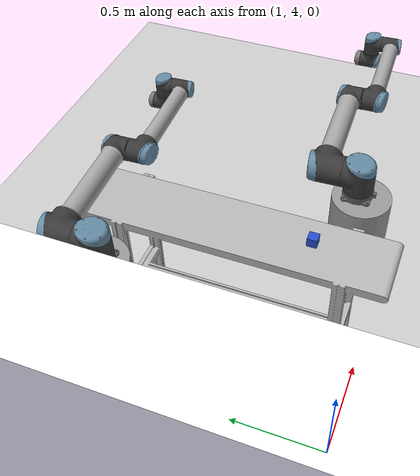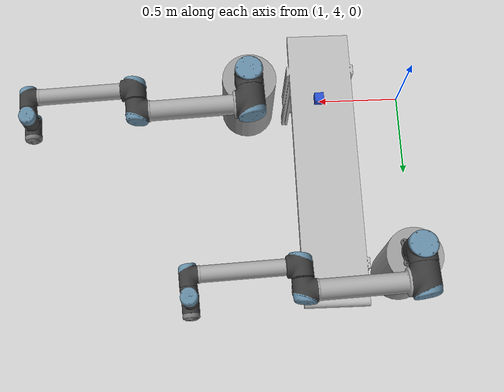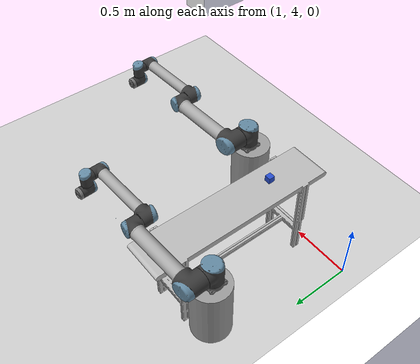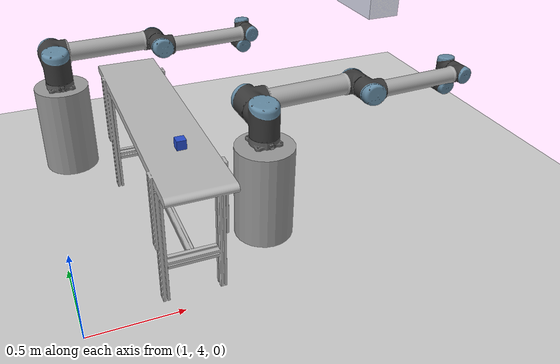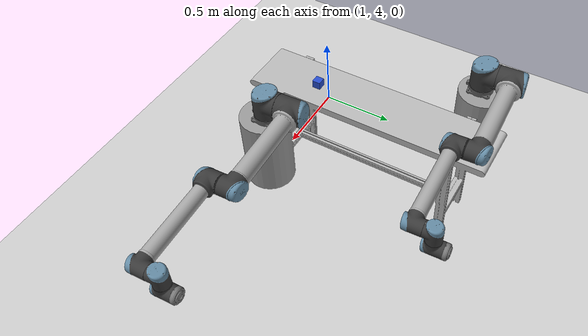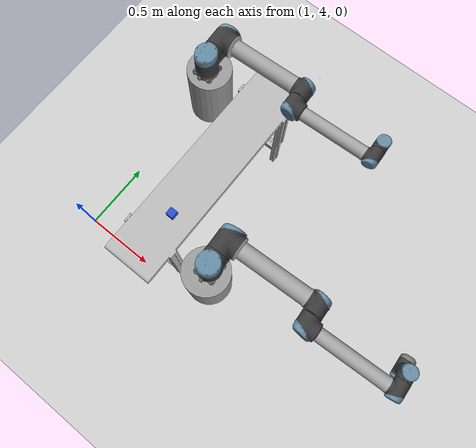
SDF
<sdf version="1.7">
 <world name="default">
  <physics type="ode">
   <ode>
    <constraints>
     <cfm>0</cfm>
     <erp>0.2</erp>
     <contact_max_correcting_vel>100</contact_max_correcting_vel>
     <contact_surface_layer>0.001</contact_surface_layer>
    </constraints>
    <solver>
     <type>quick</type>
     <iters>50</iters>
     <sor>1.3</sor>
     <use_dynamic_moi_rescaling>0</use_dynamic_moi_rescaling>
    </solver>
   </ode>
   <max_step_size>0.001</max_step_size>
   <real_time_factor>1</real_time_factor>
   <real_time_update_rate>1000</real_time_update_rate>
  </physics>
  <model name="ground_plane">
   <static>1</static>
   <link name="link">
    <collision name="collision">
     <geometry><plane><normal>0 0 1</normal><size>100 100</size></plane></geometry>
     <surface>
      <contact><collide_bitmask>65535</collide_bitmask></contact>
      <friction><ode><mu>100</mu><mu2>50</mu2></ode></friction>
     </surface>
    </collision>
    <visual name="visual">
     <cast_shadows>0</cast_shadows>
     <geometry><plane><normal>0 0 1</normal><size>100 100</size></plane></geometry>
     <material>
      <script><uri>file://media/materials/scripts/gazebo.material</uri><name>Gazebo/Grey</name></script>
     </material>
    </visual>
   </link>
  </model>
  <light name="sun" type="directional">
   <pose>0 0 10 0 -0 0</pose>
   <diffuse>0.8 0.8 0.8 1</diffuse>
   <specular>0.2 0.2 0.2 1</specular>
   <attenuation>
    <range>1000</range>
    <constant>0.9</constant>
    <linear>0.01</linear>
    <quadratic>0.001</quadratic>
   </attenuation>
   <direction>-0.5 0.1 -0.9</direction>
   <spot><inner_angle>0</inner_angle><outer_angle>0</outer_angle><falloff>0</falloff></spot>
  </light>
  <model name="aass_lab">
   <static>1</static>
   <link name="aass_lab_structure">
    <collision name="aass_lab_collision">
     <geometry><mesh><uri>model://aass_lab/meshes/lab.dae</uri></mesh></geometry>
    </collision>
    <visual name="visual">
     <geometry><mesh><uri>model://aass_lab/meshes/lab.dae</uri></mesh></geometry>
     <cast_shadows>0</cast_shadows>
    </visual>
   </link>
  </model>
  <gravity>0 0 -9.8</gravity>
  <magnetic_field>6e-06 2.3e-05 -4.2e-05</magnetic_field>
  <atmosphere type="adiabatic"/>
  <scene><ambient>0.4 0.4 0.4 1</ambient><background>0.7 0.7 0.7 1</background><shadows>1</shadows></scene>
  <spherical_coordinates>
   <surface_model>EARTH_WGS84</surface_model>
   <latitude_deg>0</latitude_deg>
   <longitude_deg>0</longitude_deg>
   <elevation>0</elevation>
   <heading_deg>0</heading_deg>
  </spherical_coordinates>
  <model name="conveyor_belt">
   <joint name="fixed" type="fixed">
    <pose relative_to="__model__">1.58059 4.67206 0 0 -0 0</pose>
    <parent>world</parent>
    <child>belt_visual</child>
   </joint>
   <link name="belt_visual">
    <pose relative_to="fixed">0 0 0 0 -0 0</pose>
    <inertial>
     <pose>0 -0 0.66019 0 -0 0</pose>
     <mass>71.953</mass>
     <inertia>
      <ixx>7.5972</ixx>
      <ixy>-1.394e-14</ixy>
      <ixz>1.9328e-17</ixz>
      <iyy>0.99673</iyy>
      <iyz>-9.2056e-18</iyz>
      <izz>8.1168</izz>
     </inertia>
    </inertial>
    <collision name="belt_visual_collision">
     <pose>0 0 0 1.5708 -0 1.5708</pose>
     <geometry>
      <mesh>
       <scale>1 1 1</scale>
       <uri>/home/varadaraya-shenoy/RnD1/nav1/src/navigation_oru-release/gazebo_oru/conveyor_demo/src/demo_world/meshes/conveyor_simple.stl</uri>
      </mesh>
     </geometry>
    </collision>
    <visual name="belt_visual_visual">
     <geometry>
      <mesh>
       <scale>1 1 1</scale>
       <uri>/home/varadaraya-shenoy/RnD1/nav1/src/navigation_oru-release/gazebo_oru/conveyor_demo/src/demo_world/meshes/conveyor_belt.stl</uri>
      </mesh>
     </geometry>
    </visual>
   </link>
   <joint name="belt_joint" type="prismatic">
    <pose relative_to="belt_visual">0 0 0.74 0 -0 0</pose>
    <parent>belt_visual</parent>
    <child>belt_moving</child>
    <axis>
     <xyz>0 1 0</xyz>
     <limit><lower>0</lower><upper>1</upper><effort>1000</effort><velocity>1000</velocity></limit>
     <dynamics><spring_reference>0</spring_reference><spring_stiffness>0</spring_stiffness></dynamics>
    </axis>
   </joint>
   <link name="belt_moving">
    <pose relative_to="belt_joint">0 0 0 0 -0 0</pose>
    <inertial>
     <mass>100</mass>
     <inertia><ixx>0</ixx><ixy>0</ixy><ixz>0</ixz><iyy>0</iyy><iyz>0</iyz><izz>0</izz></inertia>
    </inertial>
    <collision name="belt_moving_collision">
     <pose>0 0 0.0005 0 -0 0</pose>
     <geometry><box><size>0.425 1.2 0.001</size></box></geometry>
    </collision>
   </link>
   <static>0</static>
   <plugin name="conveyor_belt_plugin" filename="libROSConveyorBeltPlugin.so">
    <robot_namespace>/</robot_namespace>
    <link>belt_moving</link>
    <power>0</power>
    <max_velocity>1.0</max_velocity>
    <robotNamespace>/conveyor/</robotNamespace>
   </plugin>
   <pose>2e-06 -0 -2e-06 0 -2e-06 0</pose>
  </model>
  <model name="ur10">
   <link name="base">
    <inertial>
     <mass>4</mass>
     <inertia>
      <ixx>0.00610633</ixx>
      <ixy>0</ixy>
      <ixz>0</ixz>
      <iyy>0.00610633</iyy>
      <iyz>0</iyz>
      <izz>0.01125</izz>
     </inertia>
    </inertial>
    <collision name="collision">
     <pose>0 0 0.019 0 -0 0</pose>
     <geometry><cylinder><radius>0.075</radius><length>0.038</length></cylinder></geometry>
    </collision>
    <visual name="visual"><geometry><mesh><uri>model://ur10/meshes/base.dae</uri></mesh></geometry></visual>
   </link>
   <link name="shoulder">
    <pose>0 0 0.1273 0 -0 0</pose>
    <inertial>
     <mass>7.778</mass>
     <inertia>
      <ixx>0.0314743</ixx>
      <ixy>0</ixy>
      <ixz>0</ixz>
      <iyy>0.0314743</iyy>
      <iyz>0</iyz>
      <izz>0.0218756</izz>
     </inertia>
    </inertial>
    <collision name="collision">
     <geometry><cylinder><radius>0.075</radius><length>0.177</length></cylinder></geometry>
    </collision>
    <visual name="visual"><geometry><mesh><uri>model://ur10/meshes/shoulder.dae</uri></mesh></geometry></visual>
   </link>
   <link name="upper_arm">
    <pose>0 0.220941 0.1273 3.14159 1.57079 3.14159</pose>
    <inertial>
     <pose>0 0 0.306 0 -0 0</pose>
     <mass>12.93</mass>
     <inertia>
      <ixx>0.421754</ixx>
      <ixy>0</ixy>
      <ixz>0</ixz>
      <iyy>0.421754</iyy>
      <iyz>0</iyz>
      <izz>0.0363656</izz>
     </inertia>
    </inertial>
    <collision name="collision1">
     <pose>0 -0.045 0 1.5707 -0 0</pose>
     <geometry><cylinder><radius>0.075</radius><length>0.177</length></cylinder></geometry>
    </collision>
    <collision name="collision2">
     <pose>0 -0.0436 0.32 0 -0 1.5707</pose>
     <geometry><cylinder><radius>0.058</radius><length>0.461</length></cylinder></geometry>
    </collision>
    <collision name="collision3">
     <pose>0 -0.04 0.613 1.5707 -0 0</pose>
     <geometry><cylinder><radius>0.058</radius><length>0.129</length></cylinder></geometry>
    </collision>
    <visual name="visual"><geometry><mesh><uri>model://ur10/meshes/upperarm.dae</uri></mesh></geometry></visual>
   </link>
   <link name="forearm">
    <pose>0.612 0.049041 0.1273 3.14159 1.57079 3.14159</pose>
    <inertial>
     <pose>0 0 0.28615 0 -0 0</pose>
     <mass>3.87</mass>
     <inertia>
      <ixx>0.11107</ixx>
      <ixy>0</ixy>
      <ixz>0</ixz>
      <iyy>0.11107</iyy>
      <iyz>0</iyz>
      <izz>0.0108844</izz>
     </inertia>
    </inertial>
    <collision name="collision1">
     <pose>0 0 0.001 1.5707 -0 0</pose>
     <geometry><cylinder><radius>0.058</radius><length>0.136</length></cylinder></geometry>
    </collision>
    <collision name="collision2">
     <pose>0 0 0.305 0 -0 1.5707</pose>
     <geometry><cylinder><radius>0.045</radius><length>0.447</length></cylinder></geometry>
    </collision>
    <collision name="collision3">
     <pose>0 0.001 0.5735 1.5707 -0 0</pose>
     <geometry><cylinder><radius>0.045</radius><length>0.119</length></cylinder></geometry>
    </collision>
    <visual name="visua"><geometry><mesh><uri>model://ur10/meshes/forearm.dae</uri></mesh></geometry></visual>
   </link>
   <link name="wrist_1">
    <pose>1.1843 0.049041 0.1273 3.14159 -0 3.14159</pose>
    <inertial>
     <mass>1.96</mass>
     <inertia>
      <ixx>0.00510825</ixx>
      <ixy>0</ixy>
      <ixz>0</ixz>
      <iyy>0.00510825</iyy>
      <iyz>0</iyz>
      <izz>0.0055125</izz>
     </inertia>
    </inertial>
    <collision name="collision">
     <pose>0 0.115 0.0025 0 -0 0</pose>
     <geometry><cylinder><radius>0.0455</radius><length>0.119</length></cylinder></geometry>
    </collision>
    <visual name="visual"><geometry><mesh><uri>model://ur10/meshes/wrist1.dae</uri></mesh></geometry></visual>
   </link>
   <link name="wrist_2">
    <pose>1.1843 0.163941 0.1273 3.14159 -0 3.14159</pose>
    <inertial>
     <mass>1.96</mass>
     <inertia>
      <ixx>0.00510825</ixx>
      <ixy>0</ixy>
      <ixz>0</ixz>
      <iyy>0.00510825</iyy>
      <iyz>0</iyz>
      <izz>0.0055125</izz>
     </inertia>
    </inertial>
    <collision name="collision">
     <pose>0 0.002 0.11659 1.5707 -0 0</pose>
     <geometry><cylinder><radius>0.0455</radius><length>0.119</length></cylinder></geometry>
    </collision>
    <visual name="visual"><geometry><mesh><uri>model://ur10/meshes/wrist2.dae</uri></mesh></geometry></visual>
   </link>
   <link name="wrist_3">
    <pose>1.1843 0.163941 0.0116 3.14159 -0 3.14159</pose>
    <inertial>
     <mass>0.202</mass>
     <inertia>
      <ixx>0.000526462</ixx>
      <ixy>0</ixy>
      <ixz>0</ixz>
      <iyy>0.000526462</iyy>
      <iyz>0</iyz>
      <izz>0.000568125</izz>
     </inertia>
    </inertial>
    <collision name="collision">
     <pose>0 0.0765 0 1.5707 -0 0</pose>
     <geometry><cylinder><radius>0.045</radius><length>0.031</length></cylinder></geometry>
    </collision>
    <visual name="visual"><geometry><mesh><uri>model://ur10/meshes/wrist3.dae</uri></mesh></geometry></visual>
   </link>
   <joint name="shoulder_pan" type="revolute">
    <child>shoulder</child>
    <parent>base</parent>
    <axis>
     <xyz expressed_in="__model__">0 0 1</xyz>
     <limit><lower>-6.28319</lower><upper>6.28319</upper><effort>330</effort><velocity>2.16</velocity></limit>
     <dynamics><spring_reference>0</spring_reference><spring_stiffness>0</spring_stiffness></dynamics>
    </axis>
   </joint>
   <joint name="shoulder_lift" type="revolute">
    <child>upper_arm</child>
    <parent>shoulder</parent>
    <axis>
     <xyz expressed_in="__model__">0 1 0</xyz>
     <limit><lower>-6.28319</lower><upper>6.28319</upper><effort>330</effort><velocity>2.16</velocity></limit>
     <dynamics><spring_reference>0</spring_reference><spring_stiffness>0</spring_stiffness></dynamics>
    </axis>
   </joint>
   <joint name="elbow" type="revolute">
    <child>forearm</child>
    <parent>upper_arm</parent>
    <axis>
     <xyz expressed_in="__model__">0 1 0</xyz>
     <limit><lower>-6.28319</lower><upper>6.28319</upper><effort>150</effort><velocity>3.15</velocity></limit>
     <dynamics><spring_reference>0</spring_reference><spring_stiffness>0</spring_stiffness></dynamics>
    </axis>
   </joint>
   <joint name="wrist_1" type="revolute">
    <child>wrist_1</child>
    <parent>forearm</parent>
    <axis>
     <xyz expressed_in="__model__">0 1 0</xyz>
     <limit><lower>-6.28319</lower><upper>6.28319</upper><effort>54</effort><velocity>3.2</velocity></limit>
     <dynamics><spring_reference>0</spring_reference><spring_stiffness>0</spring_stiffness></dynamics>
    </axis>
   </joint>
   <joint name="wrist_2" type="revolute">
    <child>wrist_2</child>
    <parent>wrist_1</parent>
    <axis>
     <xyz expressed_in="__model__">0 0 -1</xyz>
     <limit><lower>-6.28319</lower><upper>6.28319</upper><effort>54</effort><velocity>3.2</velocity></limit>
     <dynamics><spring_reference>0</spring_reference><spring_stiffness>0</spring_stiffness></dynamics>
    </axis>
   </joint>
   <joint name="wrist_3" type="revolute">
    <child>wrist_3</child>
    <parent>wrist_2</parent>
    <axis>
     <xyz expressed_in="__model__">0 1 0</xyz>
     <limit><lower>-6.28319</lower><upper>6.28319</upper><effort>54</effort><velocity>3.2</velocity></limit>
     <dynamics><spring_reference>0</spring_reference><spring_stiffness>0</spring_stiffness></dynamics>
    </axis>
   </joint>
   <pose>1.98237 4.18762 0.752656 8e-06 5e-06 0.045716</pose>
  </model>
  <model name="cube">
   <link name="base_link">
    <inertial>
     <mass>0.1</mass>
     <inertia>
      <ixx>4.16667e-05</ixx>
      <ixy>0</ixy>
      <ixz>0</ixz>
      <iyy>4.16667e-05</iyy>
      <iyz>0</iyz>
      <izz>4.16667e-05</izz>
     </inertia>
    </inertial>
    <collision name="base_link_collision">
     <pose>0 0 0.025 0 -0 0</pose>
     <geometry><box><size>0.05 0.05 0.05</size></box></geometry>
    </collision>
    <visual name="base_link_visual">
     <pose>0 0 0.025 0 -0 0</pose>
     <geometry><box><size>0.05 0.05 0.05</size></box></geometry>
     <material>
      <script><name>Gazebo/Blue</name><uri>file://media/materials/scripts/gazebo.material</uri></script>
     </material>
    </visual>
   </link>
   <pose>1.6 4.30202 0.740993 -0 -0.000309 6e-06</pose>
  </model>
  <model name="unit_cylinder">
   <link name="link">
    <inertial>
     <mass>1</mass>
     <inertia><ixx>0.145833</ixx><ixy>0</ixy><ixz>0</ixz><iyy>0.145833</iyy><iyz>0</iyz><izz>0.125</izz></inertia>
    </inertial>
    <visual name="visual">
     <geometry><cylinder><radius>0.15</radius><length>0.5</length></cylinder></geometry>
     <material>
      <script><name>Gazebo/Grey</name><uri>file://media/materials/scripts/gazebo.material</uri></script>
      <shader type="pixel"><normal_map>__default__</normal_map></shader>
      <ambient>0.3 0.3 0.3 1</ambient>
      <diffuse>0.7 0.7 0.7 1</diffuse>
      <specular>0.01 0.01 0.01 1</specular>
      <emissive>0 0 0 1</emissive>
     </material>
    </visual>
    <collision name="collision">
     <geometry><cylinder><radius>0.5</radius><length>1</length></cylinder></geometry>
     <surface>
      <friction>
       <ode><mu>1</mu><mu2>1</mu2><fdir1>0 0 0</fdir1><slip1>0</slip1><slip2>0</slip2></ode>
       <torsional>
        <coefficient>1</coefficient>
        <patch_radius>0</patch_radius>
        <surface_radius>0</surface_radius>
        <use_patch_radius>1</use_patch_radius>
        <ode><slip>0</slip></ode>
       </torsional>
      </friction>
      <bounce><restitution_coefficient>0</restitution_coefficient><threshold>1e+06</threshold></bounce>
      <contact>
       <collide_without_contact>0</collide_without_contact>
       <collide_without_contact_bitmask>1</collide_without_contact_bitmask>
       <collide_bitmask>1</collide_bitmask>
       <ode>
        <soft_cfm>0</soft_cfm>
        <soft_erp>0.2</soft_erp>
        <kp>1e+13</kp>
        <kd>1</kd>
        <max_vel>0.01</max_vel>
        <min_depth>0</min_depth>
       </ode>
       <bullet>
        <split_impulse>1</split_impulse>
        <split_impulse_penetration_threshold>-0.01</split_impulse_penetration_threshold>
        <soft_cfm>0</soft_cfm>
        <soft_erp>0.2</soft_erp>
        <kp>1e+13</kp>
        <kd>1</kd>
       </bullet>
      </contact>
     </surface>
    </collision>
   </link>
   <static>0</static>
   <pose>1.97526 4.16273 0.5 0 -0 0.000319</pose>
  </model>
  <model name="unit_cylinder_clone">
   <link name="link">
    <inertial>
     <mass>1</mass>
     <inertia><ixx>0.145833</ixx><ixy>0</ixy><ixz>0</ixz><iyy>0.145833</iyy><iyz>0</iyz><izz>0.125</izz></inertia>
    </inertial>
    <visual name="visual">
     <geometry><cylinder><radius>0.15</radius><length>0.5</length></cylinder></geometry>
     <material>
      <script><name>Gazebo/Grey</name><uri>file://media/materials/scripts/gazebo.material</uri></script>
      <shader type="pixel"><normal_map>__default__</normal_map></shader>
      <ambient>0.3 0.3 0.3 1</ambient>
      <diffuse>0.7 0.7 0.7 1</diffuse>
      <specular>0.01 0.01 0.01 1</specular>
      <emissive>0 0 0 1</emissive>
     </material>
    </visual>
    <collision name="collision">
     <geometry><cylinder><radius>0.5</radius><length>1</length></cylinder></geometry>
     <surface>
      <friction>
       <ode><mu>1</mu><mu2>1</mu2><fdir1>0 0 0</fdir1><slip1>0</slip1><slip2>0</slip2></ode>
       <torsional>
        <coefficient>1</coefficient>
        <patch_radius>0</patch_radius>
        <surface_radius>0</surface_radius>
        <use_patch_radius>1</use_patch_radius>
        <ode><slip>0</slip></ode>
       </torsional>
      </friction>
      <bounce><restitution_coefficient>0</restitution_coefficient><threshold>1e+06</threshold></bounce>
      <contact>
       <collide_without_contact>0</collide_without_contact>
       <collide_without_contact_bitmask>1</collide_without_contact_bitmask>
       <collide_bitmask>1</collide_bitmask>
       <ode>
        <soft_cfm>0</soft_cfm>
        <soft_erp>0.2</soft_erp>
        <kp>1e+13</kp>
        <kd>1</kd>
        <max_vel>0.01</max_vel>
        <min_depth>0</min_depth>
       </ode>
       <bullet>
        <split_impulse>1</split_impulse>
        <split_impulse_penetration_threshold>-0.01</split_impulse_penetration_threshold>
        <soft_cfm>0</soft_cfm>
        <soft_erp>0.2</soft_erp>
        <kp>1e+13</kp>
        <kd>1</kd>
       </bullet>
      </contact>
     </surface>
    </collision>
   </link>
   <static>0</static>
   <pose>1.16116 5.19196 0.5 0 -0 0.000319</pose>
  </model>
  <model name="ur10_clone">
   <link name="base">
    <inertial>
     <mass>4</mass>
     <inertia>
      <ixx>0.00610633</ixx>
      <ixy>0</ixy>
      <ixz>0</ixz>
      <iyy>0.00610633</iyy>
      <iyz>0</iyz>
      <izz>0.01125</izz>
     </inertia>
    </inertial>
    <collision name="collision">
     <pose>0 0 0.019 0 -0 0</pose>
     <geometry><cylinder><radius>0.075</radius><length>0.038</length></cylinder></geometry>
    </collision>
    <visual name="visual"><geometry><mesh><uri>model://ur10/meshes/base.dae</uri></mesh></geometry></visual>
   </link>
   <link name="shoulder">
    <pose>0 0 0.1273 0 -0 0</pose>
    <inertial>
     <mass>7.778</mass>
     <inertia>
      <ixx>0.0314743</ixx>
      <ixy>0</ixy>
      <ixz>0</ixz>
      <iyy>0.0314743</iyy>
      <iyz>0</iyz>
      <izz>0.0218756</izz>
     </inertia>
    </inertial>
    <collision name="collision">
     <geometry><cylinder><radius>0.075</radius><length>0.177</length></cylinder></geometry>
    </collision>
    <visual name="visual"><geometry><mesh><uri>model://ur10/meshes/shoulder.dae</uri></mesh></geometry></visual>
   </link>
   <link name="upper_arm">
    <pose>0 0.220941 0.1273 3.14159 1.57079 3.14159</pose>
    <inertial>
     <pose>0 0 0.306 0 -0 0</pose>
     <mass>12.93</mass>
     <inertia>
      <ixx>0.421754</ixx>
      <ixy>0</ixy>
      <ixz>0</ixz>
      <iyy>0.421754</iyy>
      <iyz>0</iyz>
      <izz>0.0363656</izz>
     </inertia>
    </inertial>
    <collision name="collision1">
     <pose>0 -0.045 0 1.5707 -0 0</pose>
     <geometry><cylinder><radius>0.075</radius><length>0.177</length></cylinder></geometry>
    </collision>
    <collision name="collision2">
     <pose>0 -0.0436 0.32 0 -0 1.5707</pose>
     <geometry><cylinder><radius>0.058</radius><length>0.461</length></cylinder></geometry>
    </collision>
    <collision name="collision3">
     <pose>0 -0.04 0.613 1.5707 -0 0</pose>
     <geometry><cylinder><radius>0.058</radius><length>0.129</length></cylinder></geometry>
    </collision>
    <visual name="visual"><geometry><mesh><uri>model://ur10/meshes/upperarm.dae</uri></mesh></geometry></visual>
   </link>
   <link name="forearm">
    <pose>0.612 0.049041 0.1273 3.14159 1.57079 3.14159</pose>
    <inertial>
     <pose>0 0 0.28615 0 -0 0</pose>
     <mass>3.87</mass>
     <inertia>
      <ixx>0.11107</ixx>
      <ixy>0</ixy>
      <ixz>0</ixz>
      <iyy>0.11107</iyy>
      <iyz>0</iyz>
      <izz>0.0108844</izz>
     </inertia>
    </inertial>
    <collision name="collision1">
     <pose>0 0 0.001 1.5707 -0 0</pose>
     <geometry><cylinder><radius>0.058</radius><length>0.136</length></cylinder></geometry>
    </collision>
    <collision name="collision2">
     <pose>0 0 0.305 0 -0 1.5707</pose>
     <geometry><cylinder><radius>0.045</radius><length>0.447</length></cylinder></geometry>
    </collision>
    <collision name="collision3">
     <pose>0 0.001 0.5735 1.5707 -0 0</pose>
     <geometry><cylinder><radius>0.045</radius><length>0.119</length></cylinder></geometry>
    </collision>
    <visual name="visua"><geometry><mesh><uri>model://ur10/meshes/forearm.dae</uri></mesh></geometry></visual>
   </link>
   <link name="wrist_1">
    <pose>1.1843 0.049041 0.1273 3.14159 -0 3.14159</pose>
    <inertial>
     <mass>1.96</mass>
     <inertia>
      <ixx>0.00510825</ixx>
      <ixy>0</ixy>
      <ixz>0</ixz>
      <iyy>0.00510825</iyy>
      <iyz>0</iyz>
      <izz>0.0055125</izz>
     </inertia>
    </inertial>
    <collision name="collision">
     <pose>0 0.115 0.0025 0 -0 0</pose>
     <geometry><cylinder><radius>0.0455</radius><length>0.119</length></cylinder></geometry>
    </collision>
    <visual name="visual"><geometry><mesh><uri>model://ur10/meshes/wrist1.dae</uri></mesh></geometry></visual>
   </link>
   <link name="wrist_2">
    <pose>1.1843 0.163941 0.1273 3.14159 -0 3.14159</pose>
    <inertial>
     <mass>1.96</mass>
     <inertia>
      <ixx>0.00510825</ixx>
      <ixy>0</ixy>
      <ixz>0</ixz>
      <iyy>0.00510825</iyy>
      <iyz>0</iyz>
      <izz>0.0055125</izz>
     </inertia>
    </inertial>
    <collision name="collision">
     <pose>0 0.002 0.11659 1.5707 -0 0</pose>
     <geometry><cylinder><radius>0.0455</radius><length>0.119</length></cylinder></geometry>
    </collision>
    <visual name="visual"><geometry><mesh><uri>model://ur10/meshes/wrist2.dae</uri></mesh></geometry></visual>
   </link>
   <link name="wrist_3">
    <pose>1.1843 0.163941 0.0116 3.14159 -0 3.14159</pose>
    <inertial>
     <mass>0.202</mass>
     <inertia>
      <ixx>0.000526462</ixx>
      <ixy>0</ixy>
      <ixz>0</ixz>
      <iyy>0.000526462</iyy>
      <iyz>0</iyz>
      <izz>0.000568125</izz>
     </inertia>
    </inertial>
    <collision name="collision">
     <pose>0 0.0765 0 1.5707 -0 0</pose>
     <geometry><cylinder><radius>0.045</radius><length>0.031</length></cylinder></geometry>
    </collision>
    <visual name="visual"><geometry><mesh><uri>model://ur10/meshes/wrist3.dae</uri></mesh></geometry></visual>
   </link>
   <joint name="shoulder_pan" type="revolute">
    <child>shoulder</child>
    <parent>base</parent>
    <axis>
     <xyz expressed_in="__model__">0 0 1</xyz>
     <limit><lower>-6.28319</lower><upper>6.28319</upper><effort>330</effort><velocity>2.16</velocity></limit>
     <dynamics><spring_reference>0</spring_reference><spring_stiffness>0</spring_stiffness></dynamics>
    </axis>
   </joint>
   <joint name="shoulder_lift" type="revolute">
    <child>upper_arm</child>
    <parent>shoulder</parent>
    <axis>
     <xyz expressed_in="__model__">0 1 0</xyz>
     <limit><lower>-6.28319</lower><upper>6.28319</upper><effort>330</effort><velocity>2.16</velocity></limit>
     <dynamics><spring_reference>0</spring_reference><spring_stiffness>0</spring_stiffness></dynamics>
    </axis>
   </joint>
   <joint name="elbow" type="revolute">
    <child>forearm</child>
    <parent>upper_arm</parent>
    <axis>
     <xyz expressed_in="__model__">0 1 0</xyz>
     <limit><lower>-6.28319</lower><upper>6.28319</upper><effort>150</effort><velocity>3.15</velocity></limit>
     <dynamics><spring_reference>0</spring_reference><spring_stiffness>0</spring_stiffness></dynamics>
    </axis>
   </joint>
   <joint name="wrist_1" type="revolute">
    <child>wrist_1</child>
    <parent>forearm</parent>
    <axis>
     <xyz expressed_in="__model__">0 1 0</xyz>
     <limit><lower>-6.28319</lower><upper>6.28319</upper><effort>54</effort><velocity>3.2</velocity></limit>
     <dynamics><spring_reference>0</spring_reference><spring_stiffness>0</spring_stiffness></dynamics>
    </axis>
   </joint>
   <joint name="wrist_2" type="revolute">
    <child>wrist_2</child>
    <parent>wrist_1</parent>
    <axis>
     <xyz expressed_in="__model__">0 0 -1</xyz>
     <limit><lower>-6.28319</lower><upper>6.28319</upper><effort>54</effort><velocity>3.2</velocity></limit>
     <dynamics><spring_reference>0</spring_reference><spring_stiffness>0</spring_stiffness></dynamics>
    </axis>
   </joint>
   <joint name="wrist_3" type="revolute">
    <child>wrist_3</child>
    <parent>wrist_2</parent>
    <axis>
     <xyz expressed_in="__model__">0 1 0</xyz>
     <limit><lower>-6.28319</lower><upper>6.28319</upper><effort>54</effort><velocity>3.2</velocity></limit>
     <dynamics><spring_reference>0</spring_reference><spring_stiffness>0</spring_stiffness></dynamics>
    </axis>
   </joint>
   <pose>1.15633 5.17655 0.752654 8e-06 5e-06 0.045716</pose>
  </model>
 </world>
</sdf>
